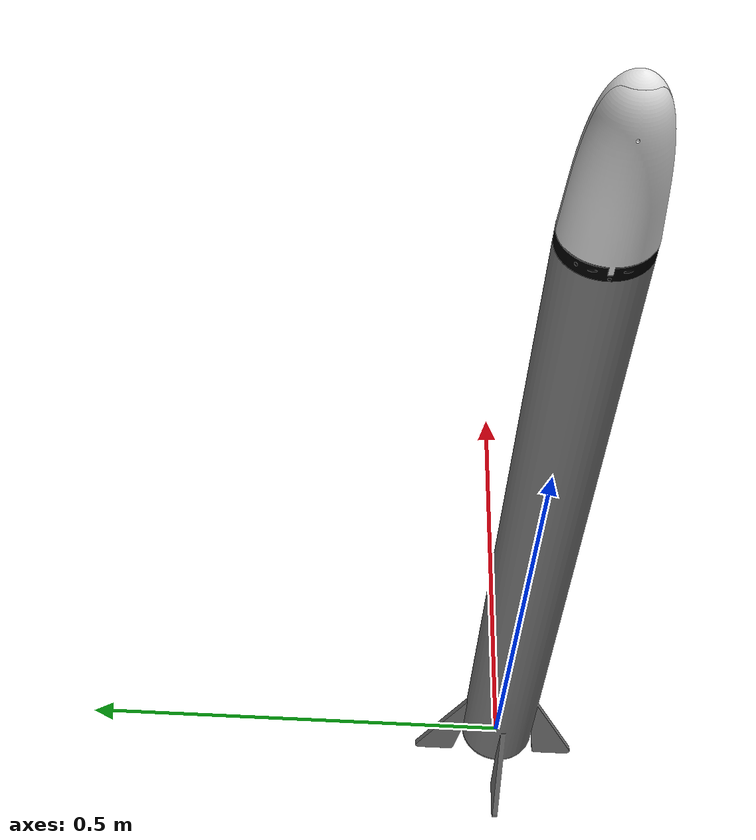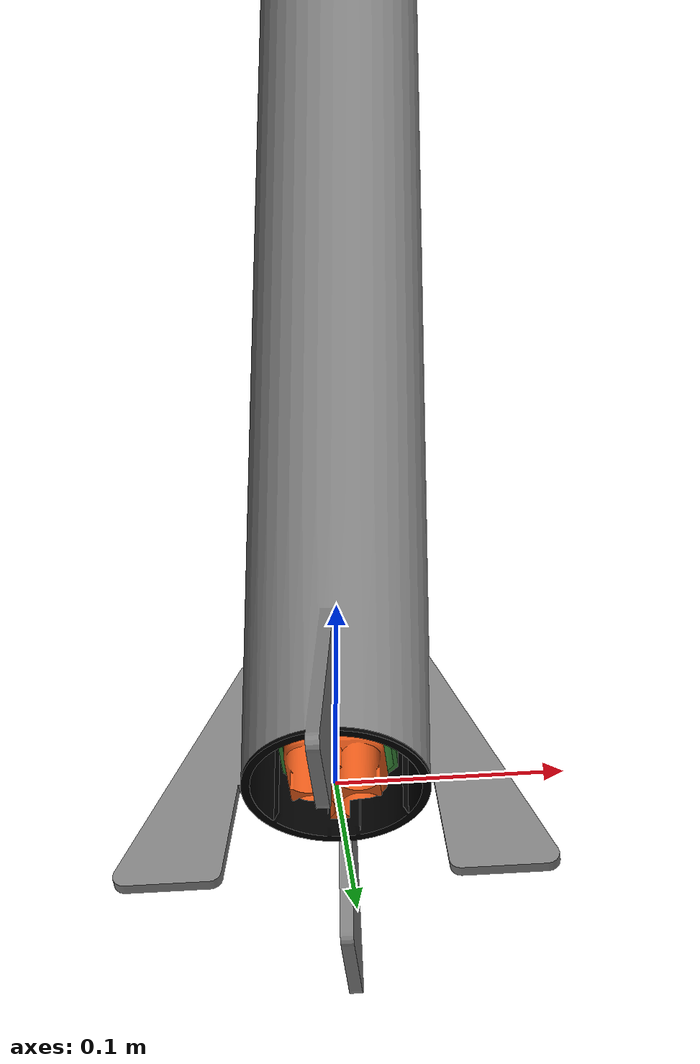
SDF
<?xml version='1.0' encoding='utf-8'?>
<sdf version="1.7">
    <model name="RocketF2">

        <link name="GimbalRing">
            <pose>0.0 0.0 0.06300000000000001 1.5707963267948966 -0.0 0.0</pose>
            <inertial>
                <mass>0.047826997766976895</mass>
                <pose>-0.0005904497216814358 -0.01612159693708189 -0.003174012494590676 0.0 0.0 0.0</pose>
                <inertia>
                    <ixx>9.247695512063297e-05</ixx>
                    <iyy>6.846220016182717e-05</iyy>
                    <izz>8.548211860348217e-05</izz>
                    <ixy>1.0000854119964382e-06</ixy>
                    <iyz>2.7214720193506042e-06</iyz>
                    <ixz>1.0320584757449382e-06</ixz>
                </inertia>
            </inertial>
            <visual name="GimbalRing_visual">
                <geometry>
                    <mesh>
                        <uri>/home/andreas/Rocketsim_ros2_ws/src/gz_simulator/models/SimplifiedRocket/meshes/GimbalRing.stl</uri>
                        <scale>0.001 0.001 0.001</scale>
                    </mesh>
                </geometry>
                <material>
					<ambient>0.0 0.0 0.0 1</ambient>
					<diffuse>0.0 0.0 0.0 1</diffuse>
					<specular>0.2 0.2 0.2 1</specular>
					<emissive>0.0 0.0 0.0 1</emissive>
				</material>
            </visual>
            <collision name="GimbalRing_collision">
                <geometry>
                    <mesh>
                        <uri>/home/andreas/Rocketsim_ros2_ws/src/gz_simulator/models/SimplifiedRocket/meshes/GimbalRing.stl</uri>
                        <scale>0.001 0.001 0.001</scale>
                    </mesh>
                </geometry>
            </collision>
        </link>

        <link name="Body">
            <pose>0.0 0.0 0.0 0.0 -0.0 0.0</pose>
            <inertial>
                <mass>0.353812590984929</mass>
                <pose>1.4936994403438587e-16 -1.4936994403438587e-16 0.3369858066538572 0.0 0.0 0.0</pose>
                <inertia>
                    <ixx>0.26044413702373137</ixx>
                    <iyy>0.2604441370237316</iyy>
                    <izz>0.00783383376278078</izz>
                    <ixy>5.140464054420581e-17</ixy>
                    <iyz>-1.4678070017782585e-16</iyz>
                    <ixz>1.4678070017782585e-16</ixz>
                </inertia>
            </inertial>
            <visual name="Body_visual">
                <geometry>
                    <mesh>
                        <uri>/home/andreas/Rocketsim_ros2_ws/src/gz_simulator/models/SimplifiedRocket/meshes/Body.stl</uri>
                        <scale>0.001 0.001 0.001</scale>
                    </mesh>
                </geometry>
                <material>
					<ambient>0.3 0.3 0.3 1</ambient>
					<diffuse>0.5 0.5 0.5 1</diffuse>
					<specular>0.5 0.5 0.5 1</specular>
					<emissive>0.0 0.0 0.0 1</emissive>
				</material>
            </visual>
            <collision name="Body_collision">
                <geometry>
                    <mesh>
                        <uri>/home/andreas/Rocketsim_ros2_ws/src/gz_simulator/models/SimplifiedRocket/meshes/Body.stl</uri>
                        <scale>0.001 0.001 0.001</scale>
                    </mesh>
                </geometry>
            </collision>

            <sensor name="imu_sensor" type="imu">
                <pose>0 0 0 1.5708 0 -1.5708</pose>
                <update_rate>100.0</update_rate>
                <always_on>true</always_on>
                <visualize>true</visualize>

                <imu>
                    <angular_velocity>
                    <x>
                        <noise type="gaussian">
                        <mean>0.0</mean>
                        <stddev>0.0</stddev>
                        <bias_mean>0.0</bias_mean>
                        <bias_stddev>0.0</bias_stddev>
                        <dynamic_bias_stddev>0.0</dynamic_bias_stddev>
                        <dynamic_bias_correlation_time>400.0</dynamic_bias_correlation_time>
                        <precision>0.0</precision>
                        </noise>
                    </x>
                    <y>
                        <noise type="gaussian">
                        <mean>0.0</mean>
                        <stddev>0.0</stddev>
                        <bias_mean>0.0</bias_mean>
                        <bias_stddev>0.0</bias_stddev>
                        <dynamic_bias_stddev>0.0</dynamic_bias_stddev>
                        <dynamic_bias_correlation_time>400.0</dynamic_bias_correlation_time>
                        <precision>0.0</precision>
                        </noise>
                    </y>
                    <z>
                        <noise type="gaussian">
                        <mean>0.0</mean>
                        <stddev>0.0</stddev>
                        <bias_mean>0.0</bias_mean>
                        <bias_stddev>0.0</bias_stddev>
                        <dynamic_bias_stddev>0.0</dynamic_bias_stddev>
                        <dynamic_bias_correlation_time>400.0</dynamic_bias_correlation_time>
                        <precision>0.0</precision>
                        </noise>
                    </z>
                    </angular_velocity>

                    <linear_acceleration>
                    <x>
                        <noise type="gaussian">
                        <mean>0.0</mean>
                        <stddev>0.0</stddev>
                        <bias_mean>0.0</bias_mean>
                        <bias_stddev>0.0</bias_stddev>
                        <dynamic_bias_stddev>0.0</dynamic_bias_stddev>
                        <dynamic_bias_correlation_time>400.0</dynamic_bias_correlation_time>
                        <precision>0.0</precision>
                        </noise>
                    </x>
                    <y>
                        <noise type="gaussian">
                        <mean>0.0</mean>
                        <stddev>0.0</stddev>
                        <bias_mean>0.0</bias_mean>
                        <bias_stddev>0.0</bias_stddev>
                        <dynamic_bias_stddev>0.0</dynamic_bias_stddev>
                        <dynamic_bias_correlation_time>400.0</dynamic_bias_correlation_time>
                        <precision>0.0</precision>
                        </noise>
                    </y>
                    <z>
                        <noise type="gaussian">
                        <mean>0.0</mean>
                        <stddev>0.0</stddev>
                        <bias_mean>0.0</bias_mean>
                        <bias_stddev>0.0</bias_stddev>
                        <dynamic_bias_stddev>0.0</dynamic_bias_stddev>
                        <dynamic_bias_correlation_time>400.0</dynamic_bias_correlation_time>
                        <precision>0.0</precision>
                        </noise>
                    </z>
                    </linear_acceleration>
                </imu>

                <plugin
                    filename="gz-sim-imu-system"
                    name="gz::sim::systems::Imu">
                    <topic>Imu</topic>
                    <publish_offset>true</publish_offset>
                </plugin>
            </sensor>

            <sensor name="magnetometer_sensor" type="magnetometer">
                <pose>0 0 0 1.5708 0 -1.5708</pose>
                <update_rate>100.0</update_rate>
                <always_on>true</always_on>
                <visualize>true</visualize>

                <magnetometer>
                    <x>
                    <noise type="gaussian">
                        <mean>0.0</mean>
                        <bias_mean>0.0</bias_mean>
                        <stddev>0.0</stddev>
                    </noise>
                    </x>
                    <y>
                    <noise type="gaussian">
                        <mean>0.0</mean>
                        <bias_mean>0.0</bias_mean>
                        <stddev>0.0</stddev>
                    </noise>
                    </y>
                    <z>
                    <noise type="gaussian">
                        <mean>0.0</mean>
                        <bias_mean>0.0</bias_mean>
                        <stddev>0.0</stddev>
                    </noise>
                    </z>
                </magnetometer>

                <plugin
                    filename="gz-sim-magnetometer-system"
                    name="gz::sim::systems::Magnetometer">
                    <topic>Magnetometer</topic>
                </plugin>
            </sensor>

            <sensor name="air_pressure" type="air_pressure">
                <pose>0 0 0 0 0 0</pose>
                <update_rate>100.0</update_rate>
                <always_on>true</always_on>
                <visualize>true</visualize>

                <air_pressure>
                    <pressure>
                        <noise type="gaussian">
                            <mean>0.00000008</mean>
                            <stddev>0.0</stddev>
                        </noise>
                    </pressure>
                    <reference_altitude>0</reference_altitude>
                </air_pressure>

                <plugin
                    filename="gz-sim-air-pressure-system"
                    name="gz::sim::systems::AirPressure">
                    <topic>Air_pressure</topic>
                </plugin>
            </sensor>
        </link>

        <link name="GimbalX">
            <pose>0.0 3.552713678800501e-17 0.06300000000000001 1.5707963267948966 -0.0 0.0</pose>
            <inertial>
                <mass>0.020738845304391417</mass>
                <pose>0.0006901290514675236 0.0017338761050156215 -0.0017947612978733308 0.0 0.0 0.0</pose>
                <inertia>
                    <ixx>2.498363790034015e-05</ixx>
                    <iyy>1.0514748971381893e-05</iyy>
                    <izz>2.0969581513841307e-05</izz>
                    <ixy>-4.531946466929598e-07</ixy>
                    <iyz>9.035875595627661e-07</iyz>
                    <ixz>2.3629816017468772e-07</ixz>
                </inertia>
            </inertial>
            <visual name="GimbalX_visual">
                <geometry>
                    <mesh>
                        <uri>/home/andreas/Rocketsim_ros2_ws/src/gz_simulator/models/SimplifiedRocket/meshes/GimbalX.stl</uri>
                        <scale>0.001 0.001 0.001</scale>
                    </mesh>
                </geometry>
                <material>
					<ambient>0.1 0.3 0.1 1</ambient>
                    <diffuse>0.2 0.5 0.2 1</diffuse>
                    <specular>0.03 0.03 0.03 1</specular>
                    <emissive>0.0 0.0 0.0 1</emissive>
				</material>
            </visual>
            <collision name="GimbalX_collision">
                <geometry>
                    <mesh>
                        <uri>/home/andreas/Rocketsim_ros2_ws/src/gz_simulator/models/SimplifiedRocket/meshes/GimbalX.stl</uri>
                        <scale>0.001 0.001 0.001</scale>
                    </mesh>
                </geometry>
            </collision>
        </link>

        <link name="Motor_Mount">
            <pose>4.4408920985006264e-17 3.552713678800501e-17 0.063 1.5707963267948966 -8.215180718794485e-16 0.0</pose>
            <inertial>
                <mass>0.03213979247603431</mass>
                <pose>5.710492043907257e-05 -0.03007762617415425 -9.973438372849427e-06 0.0 0.0 0.0</pose>
                <inertia>
                    <ixx>1.832839421329629e-05</ixx>
                    <iyy>6.913201586846351e-06</iyy>
                    <izz>1.8382633323243642e-05</izz>
                    <ixy>-6.198362677270783e-08</ixy>
                    <iyz>1.0602840834251612e-08</iyz>
                    <ixz>5.382855181594554e-09</ixz>
                </inertia>
            </inertial>
            <visual name="Motor_Mount_visual">
                <geometry>
                    <mesh>
                        <uri>/home/andreas/Rocketsim_ros2_ws/src/gz_simulator/models/SimplifiedRocket/meshes/MotorMount.stl</uri>
                        <scale>0.001 0.001 0.001</scale>
                    </mesh>
                </geometry>
                <material>
					<ambient>0.5 0.2 0.05 1</ambient>
                    <diffuse>0.9 0.35 0.1 1</diffuse>
                    <specular>0.03 0.03 0.03 1</specular>
                    <emissive>0.0 0.0 0.0 1</emissive>
				</material>
            </visual>
            <collision name="Motor_Mount_collision">
                <geometry>
                    <mesh>
                        <uri>/home/andreas/Rocketsim_ros2_ws/src/gz_simulator/models/SimplifiedRocket/meshes/MotorMount.stl</uri>
                        <scale>0.001 0.001 0.001</scale>
                    </mesh>
                </geometry>
            </collision>
        </link>

        <link name="Nose_Cone_Mount">
            <pose>0.0 0.0 0.804 1.5707963267948966 -0.0 0.0</pose>
            <inertial>
                <mass>0.05644276169373752</mass>
                <pose>1.155189475584641e-05 0.004382810398258812 -0.00024615770006403533 0.0 0.0 0.0</pose>
                <inertia>
                    <ixx>2.8744108228576093e-05</ixx>
                    <iyy>5.52222964872393e-05</iyy>
                    <izz>2.7877489517720566e-05</izz>
                    <ixy>-2.9824995952169905e-10</ixy>
                    <iyz>1.0069483623412505e-08</iyz>
                    <ixz>-8.782272588100155e-08</ixz>
                </inertia>
            </inertial>
            <visual name="Nose_Cone_Mount_visual">
                <geometry>
                    <mesh>
                        <uri>/home/andreas/Rocketsim_ros2_ws/src/gz_simulator/models/SimplifiedRocket/meshes/Nose_Cone_Mount.stl</uri>
                        <scale>0.001 0.001 0.001</scale>
                    </mesh>
                </geometry>
                <material>
					<ambient>0.0 0.0 0.0 1</ambient>
					<diffuse>0.0 0.0 0.0 1</diffuse>
					<specular>0.2 0.2 0.2 1</specular>
					<emissive>0.0 0.0 0.0 1</emissive>
				</material>
            </visual>
            <collision name="Nose_Cone_Mount_collision">
                <geometry>
                    <mesh>
                        <uri>/home/andreas/Rocketsim_ros2_ws/src/gz_simulator/models/SimplifiedRocket/meshes/Nose_Cone_Mount.stl</uri>
                        <scale>0.001 0.001 0.001</scale>
                    </mesh>
                </geometry>
            </collision>
        </link>

        <link name="NoseCone_Left">
            <pose>-0.04200000000000003 -0.0002000000000000049 0.8150000000000001 1.5707963267948966 -0.0 0.0</pose>
            <inertial>
                <mass>0.04333965345802538</mass>
                <pose>0.021256526437646635 0.054914295431197926 9.741590890295638e-08 0.0 0.0 0.0</pose>
                <inertia>
                    <ixx>9.878342653871913e-05</ixx>
                    <iyy>2.9733673431023993e-05</iyy>
                    <izz>8.030126647524255e-05</izz>
                    <ixy>-2.7763142127126134e-06</ixy>
                    <iyz>-4.815517991077468e-10</iyz>
                    <ixz>2.8535444555171076e-11</ixz>
                </inertia>
            </inertial>
            <visual name="NoseCone_Left_visual">
                <geometry>
                    <mesh>
                        <uri>/home/andreas/Rocketsim_ros2_ws/src/gz_simulator/models/SimplifiedRocket/meshes/NoseCone_Left.stl</uri>
                        <scale>0.001 0.001 0.001</scale>
                    </mesh>
                </geometry>
                <material>
					<ambient>0.7 0.7 0.7 1</ambient>
                    <diffuse>0.9 0.9 0.9 1</diffuse>
                    <specular>0.1 0.1 0.1 1</specular>
                    <emissive>0.0 0.0 0.0 1</emissive>
				</material>
            </visual>
            <collision name="NoseCone_Left_collision">
                <geometry>
                    <mesh>
                        <uri>/home/andreas/Rocketsim_ros2_ws/src/gz_simulator/models/SimplifiedRocket/meshes/NoseCone_Left.stl</uri>
                        <scale>0.001 0.001 0.001</scale>
                    </mesh>
                </geometry>
            </collision>
        </link>

        <link name="NoseCone_Right">
            <pose>-0.04200000000000003 -0.00020000000000000017 0.8150000000000001 1.5707963267948966 -0.0 0.0</pose>
            <inertial>
                <mass>0.044300004081928655</mass>
                <pose>0.06202670605671274 0.05696252352629188 -2.6213917566353386e-08 0.0 0.0 0.0</pose>
                <inertia>
                    <ixx>0.00010725245457752358</ixx>
                    <iyy>3.0655309119628614e-05</iyy>
                    <izz>8.941964713225087e-05</izz>
                    <ixy>5.5571933117442174e-06</ixy>
                    <iyz>9.050226639510846e-11</iyz>
                    <ixz>-4.811656494453127e-11</ixz>
                </inertia>
            </inertial>
            <visual name="NoseCone_Right_visual">
                <geometry>
                    <mesh>
                        <uri>/home/andreas/Rocketsim_ros2_ws/src/gz_simulator/models/SimplifiedRocket/meshes/NoseCone_Right.stl</uri>
                        <scale>0.001 0.001 0.001</scale>
                    </mesh>
                </geometry>
                <material>
					<ambient>0.7 0.7 0.7 1</ambient>
                    <diffuse>0.9 0.9 0.9 1</diffuse>
                    <specular>0.1 0.1 0.1 1</specular>
                    <emissive>0.0 0.0 0.0 1</emissive>
				</material>
            </visual>
            <collision name="NoseCone_Right_collision">
                <geometry>
                    <mesh>
                        <uri>/home/andreas/Rocketsim_ros2_ws/src/gz_simulator/models/SimplifiedRocket/meshes/NoseCone_Right.stl</uri>
                        <scale>0.001 0.001 0.001</scale>
                    </mesh>
                </geometry>
            </collision>
        </link>

        <joint name="Body_Rigid-1" type="fixed">
            <pose>0.0 -0.06300000000000001 0.0 0.0 0.0 0.0</pose>
            <parent>Body</parent>
            <child>GimbalRing</child>
        </joint>

        <joint name="Gimbal_Y_Revolute" type="revolute">
            <pose>0.0 -0.033000000000000015 0.03400000000000004 0.0 0.0 0.0</pose>
            <parent>GimbalRing</parent>
            <child>GimbalX</child>
            <axis>
                <xyz expressed_in="__model__">0.0 -1.0 0.0</xyz>
                <limit>
                    <lower>-0.174533</lower>
                    <upper>0.174533</upper>
                </limit>
            </axis>
        </joint>

        <joint name="Gimbal_X_Revolute" type="revolute">
            <pose>0.022499999999999916 -0.03300000000000002 3.552713678800499e-17 0.0 0.0 0.0</pose>
            <parent>GimbalX</parent>
            <child>Motor_Mount</child>
            <axis>
                <xyz expressed_in="__model__">-1.0 0.0 -0.0</xyz>
                <limit>
                    <lower>-0.174533</lower>
                    <upper>0.174533</upper>
                </limit>
            </axis>
        </joint>

        <joint name="Body_Rigid-5" type="fixed">
            <pose>0.0 -0.0040000000000000036 0.0 0.0 0.0 0.0</pose>
            <parent>Body</parent>
            <child>Nose_Cone_Mount</child>
        </joint>

        <joint name="Nose_Cone_Left_Revolute" type="revolute">
            <pose>0.0030000000000000304 -0.006000000000000005 0.002299999999999995 0.0 0.0 0.0</pose>
            <parent>Nose_Cone_Mount</parent>
            <child>NoseCone_Left</child>
            <axis>
                <xyz expressed_in="__model__">0.0 1.0 0.0</xyz>
                <limit>
                    <lower>-1.570796</lower>
                    <upper>0.0</upper>
                </limit>
            </axis>
        </joint>

        <joint name="Nose_Cone_Right_Revolute" type="revolute">
            <pose>0.08100000000000003 -0.006000000000000005 0.0023 0.0 0.0 0.0</pose>
            <parent>Nose_Cone_Mount</parent>
            <child>NoseCone_Right</child>
            <axis>
                <xyz expressed_in="__model__">0.0 1.0 0.0</xyz>
                <limit>
                    <lower>0.0</lower>
                    <upper>1.570796</upper>
                </limit>
            </axis>
        </joint>

        <plugin
            filename="gz-sim-joint-position-controller-system"
            name="gz::sim::systems::JointPositionController">
            <joint_name>Gimbal_Y_Revolute</joint_name>
            <topic>Gimbal_Y</topic>
            <p_gain>1.0</p_gain>
            <i_gain>0.001</i_gain>
            <d_gain>0.01</d_gain>
            <i_max>0.5</i_max>
            <i_min>-0.5</i_min>
            <cmd_max>1.0</cmd_max>
            <cmd_min>-1.0</cmd_min>
        </plugin>

        <plugin
            filename="gz-sim-joint-position-controller-system"
            name="gz::sim::systems::JointPositionController">
            <joint_name>Gimbal_X_Revolute</joint_name>
            <topic>Gimbal_X</topic>
            <p_gain>1.0</p_gain>
            <i_gain>0.001</i_gain>
            <d_gain>0.01</d_gain>
            <i_max>0.5</i_max>
            <i_min>-0.5</i_min>
            <cmd_max>1.0</cmd_max>
            <cmd_min>-1.0</cmd_min>
        </plugin>

        <plugin
            filename="gz-sim-joint-position-controller-system"
            name="gz::sim::systems::JointPositionController">
            <joint_name>Nose_Cone_Left_Revolute</joint_name>
            <topic>Nose_Cone_Left</topic>
            <p_gain>1.0</p_gain>
            <i_gain>0.001</i_gain>
            <d_gain>0.01</d_gain>
            <i_max>0.5</i_max>
            <i_min>-0.5</i_min>
            <cmd_max>1.0</cmd_max>
            <cmd_min>-1.0</cmd_min>
        </plugin>

        <plugin
            filename="gz-sim-joint-position-controller-system"
            name="gz::sim::systems::JointPositionController">
            <joint_name>Nose_Cone_Right_Revolute</joint_name>
            <topic>Nose_Cone_Right</topic>
            <p_gain>1.0</p_gain>
            <i_gain>0.001</i_gain>
            <d_gain>0.01</d_gain>
            <i_max>0.5</i_max>
            <i_min>-0.5</i_min>
            <cmd_max>1.0</cmd_max>
            <cmd_min>-1.0</cmd_min>
        </plugin>

        <plugin
            filename="gz-sim-pose-publisher-system"
            name="gz::sim::systems::PosePublisher">
            <publish_link_pose>true</publish_link_pose>
            <publish_visual_pose>false</publish_visual_pose>
            <publish_collision_pose>false</publish_collision_pose>
            <publish_sensor_pose>false</publish_sensor_pose>
            <publish_model_pose>true</publish_model_pose>
            <publish_nested_model_pose>false</publish_nested_model_pose>
            <use_pose_vector_msg>false</use_pose_vector_msg>
            <update_frequency>30</update_frequency>
            <static_publisher>false</static_publisher>
            <static_update_frequency>1</static_update_frequency>
        </plugin>

    </model>
</sdf>
